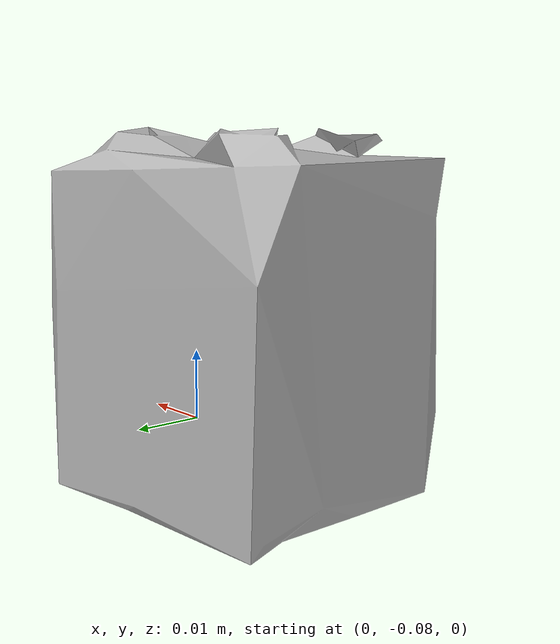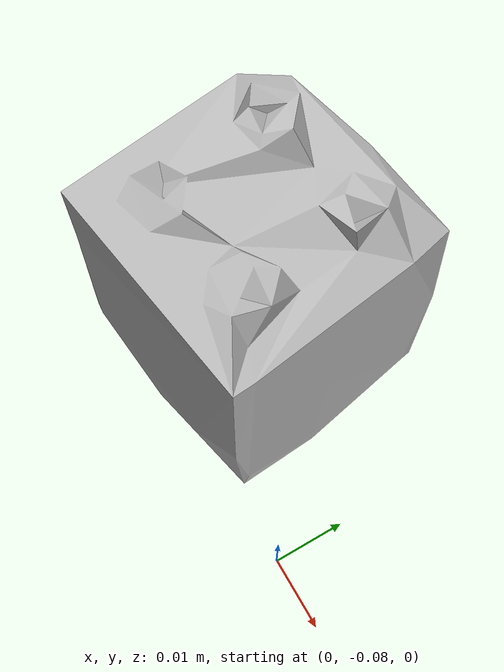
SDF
<?xml version='1.0'?>
<sdf version="1.4">
  <model name="073-f_lego_duplo">
    <static>false</static>
    <link name="link">
      <inertial>
        <pose>-0.028365805849041095 -0.06652883351726592 0.020802531117455475 -0.002413518404877327 -0.0006264515739162483 -0.0416079021530412</pose>
        <mass>0.0043977950742120206</mass>
        <inertia>
          <ixx>1.0318902467571723e-06</ixx>
          <ixy>-3.489313739467752e-23</ixy>
          <ixz>9.700202696466867e-24</ixz>
          <iyy>1.0302688041678803e-06</iyy>
          <iyz>-2.0345860258133549e-22</iyz>
          <izz>7.479833348745268e-07</izz>
        </inertia>
      </inertial>
      <collision name="collision">
        <geometry>
          <mesh>
            <!-- Use a downsampled mesh for collisions -->
            <uri>model:///073-f_lego_duplo/073-f_lego_duplo_250_collision.stl</uri>
	        </mesh>
        </geometry>
        <surface>
      </surface>
      </collision>
      <visual name="visual">
        <geometry>
          <mesh>
            <uri>model:///073-f_lego_duplo/textured.obj</uri>
	        </mesh>
        </geometry>
        <material>
          <script>
            <uri>model:///073-f_lego_duplo/073-f_lego_duplo.material</uri>
            <name>073-f_lego_duplo</name>
          </script>
        </material>
      </visual>
    </link>
  </model>
</sdf>
